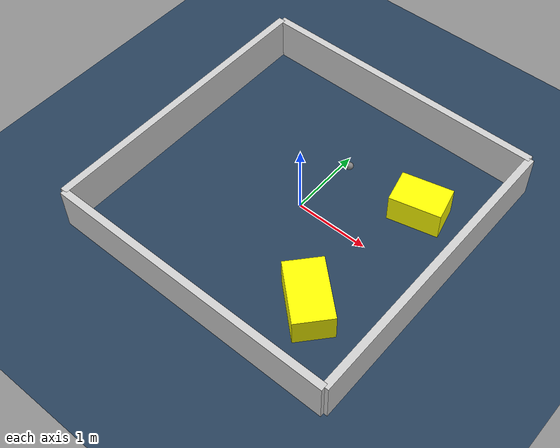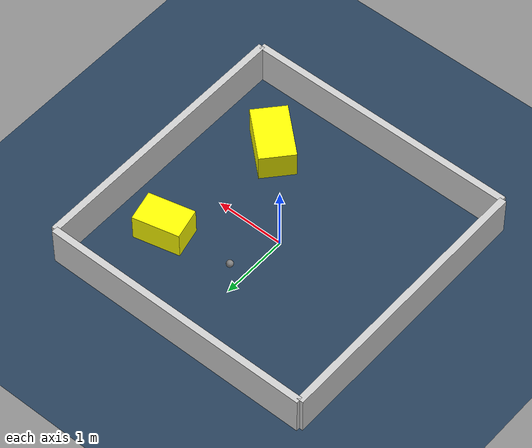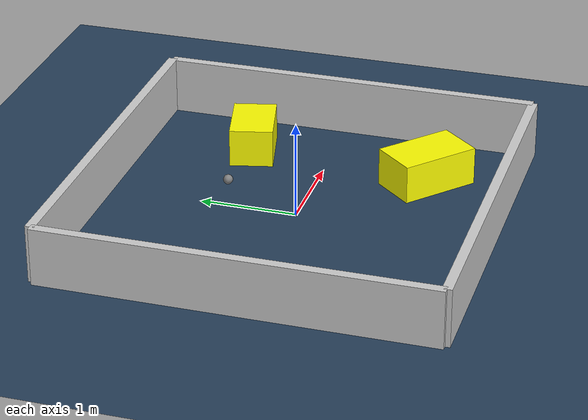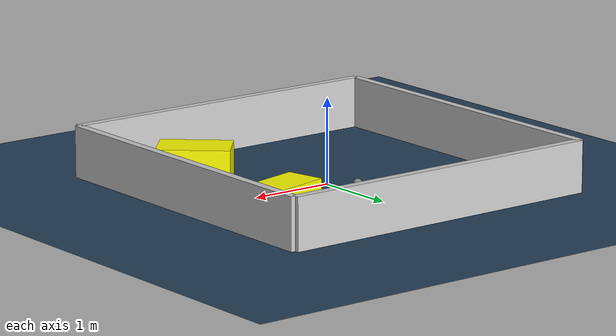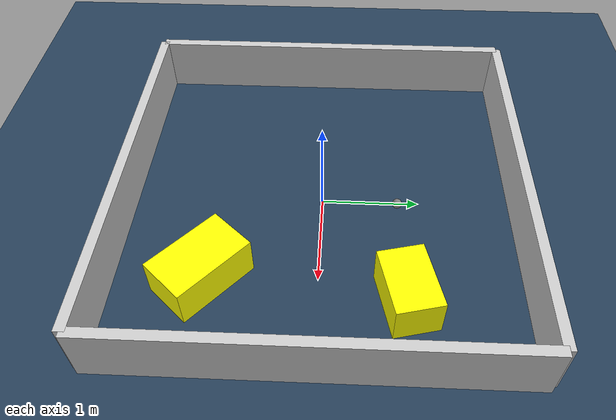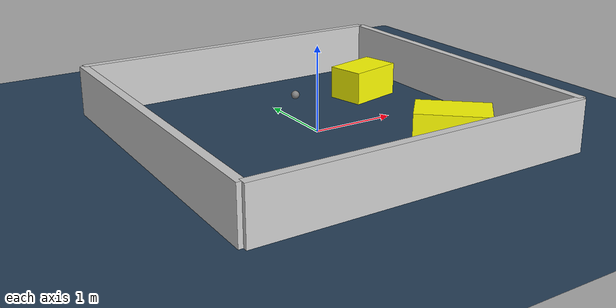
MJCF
<?xml version="1.0" ?>
<mujoco model="generated_environment">
  <option timestep="0.01" integrator="RK4" cone="elliptic"/>
  <default>
    <geom density="1"/>
  </default>
  <asset>
    <texture builtin="gradient" height="3072" rgb1="0.3 0.5 0.7" rgb2="0 0 0" type="skybox" width="512"/>
    <texture builtin="checker" height="300" mark="edge" markrgb="0.8 0.8 0.8" name="groundplane" rgb1="0.2 0.3 0.4" rgb2="0.1 0.2 0.3" type="2d" width="300"/>
    <material name="groundplane" reflectance="0.2" texrepeat="5 5" texture="groundplane" texuniform="true"/>
    <material name="robot" rgba="0.0 1.0 0.0 1"/>
  </asset>
  <worldbody>
    <light dir="0 0 -1" directional="true" pos="0 0 1.5"/>
    <geom condim="4" friction="1.0 0.005 0.001" material="groundplane" name="floor" size="0 0 0.05" type="plane"/>
    <body name="walls">
      <geom name="wall_1" condim="4" pos="-2.0 0.0 0.3" rgba="0.800000011920929 0.800000011920929 0.800000011920929 1.0" size="0.05 2.0 0.3" type="box"/>
      <geom name="wall_2" condim="4" pos="2.0 0.0 0.3" rgba="0.800000011920929 0.800000011920929 0.800000011920929 1.0" size="0.05 2.0 0.3" type="box"/>
      <geom name="wall_3" condim="4" pos="0.0 -2.0 0.3" rgba="0.800000011920929 0.800000011920929 0.800000011920929 1.0" size="2.0 0.05 0.3" type="box"/>
      <geom name="wall_4" condim="4" pos="0.0 2.0 0.3" rgba="0.800000011920929 0.800000011920929 0.800000011920929 1.0" size="2.0 0.05 0.3" type="box"/>
    </body>
    <body name="robot">
      <joint name="joint_x" type="slide" pos="0 0 0" axis="1 0 0"/>
      <joint name="joint_y" type="slide" pos="0 0 0" axis="0 1 0"/>
      <geom name="robot" type="sphere" pos="0.1745600296131189 0.7684816989974825 0.2" size="0.05" mass="5." friction="1.0 0.005 0.0001" condim="4"/>
      <site name="sensor_ball"/>
    </body>
    <body name="obstacle_1_movable">
      <geom name="obstacle_1_movable" condim="4" pos="1.039657555346046 -1.096118530255541 0.2" euler="0 0 228.40169819896286" friction="1.0 0.005 0.001" rgba="1 1 0 1" size="0.25463910524827205 0.42120754208933214 0.2" type="box" mass="0.1"/>
      <joint type="free"/>
    </body>
    <body name="obstacle_2_movable">
      <geom name="obstacle_2_movable" condim="4" pos="1.2219092885669975 0.8327152118977286 0.2" euler="0 0 13.485232206168787" friction="1.0 0.005 0.001" rgba="1 1 0 1" size="0.3384565485729553 0.22736308319081344 0.2" type="box" mass="0.1"/>
      <joint type="free"/>
    </body>
  </worldbody>
  <actuator>
    <motor name="actuator_x" joint="joint_x" gear="1" ctrlrange="-1 1"/>
    <motor name="actuator_y" joint="joint_y" gear="1" ctrlrange="-1 1"/>
  </actuator>
</mujoco>
